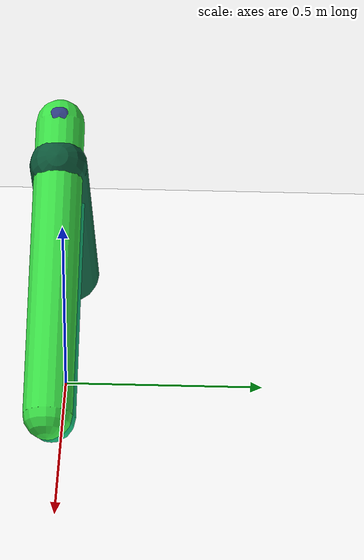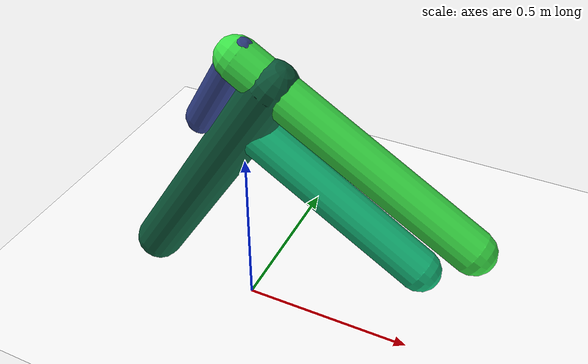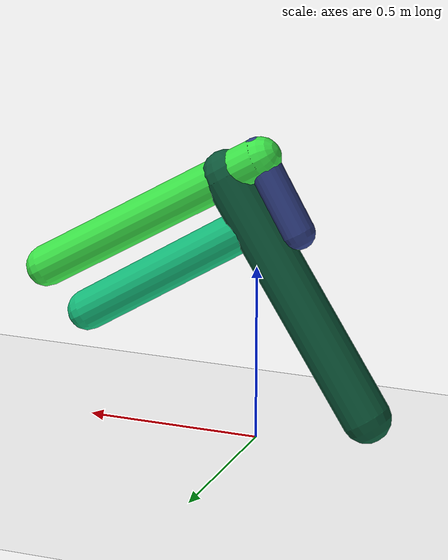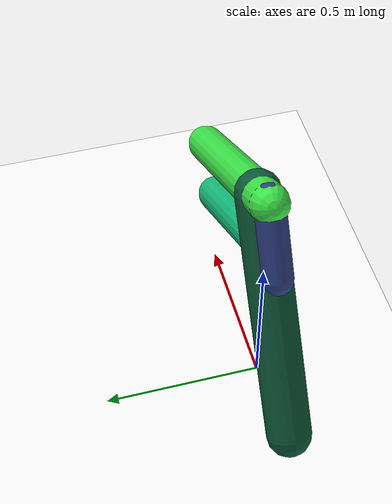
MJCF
<mujoco model="morphology">
  <option timestep="0.01"/>
  <default>
    <default class="/"/>
  </default>
  <asset>
    <texture name="texplane" type="2d" builtin="checker" rgb1="0.1 0.2 0.3" rgb2="0.2 0.3 0.4" width="300" height="300"/>
    <material name="MatPlane" class="/" texture="texplane" texrepeat="20 20" specular="1" shininess="1" reflectance="0.5"/>
  </asset>
  <worldbody>
    <light name="//unnamed_light_0" class="/" directional="true" pos="0 0 1.5" dir="0 0 -1.3" cutoff="1e+02" exponent="1" diffuse="1 1 1" specular="0.1 0.1 0.1"/>
    <geom name="ground" class="/" type="plane" size="15 15 0.5" material="MatPlane" rgba="1 1 1 1"/>
    <body name="body" pos="0 0 0.82">
      <geom name="geom0" class="/" type="capsule" contype="1" conaffinity="1" condim="3" size="0.046" rgba="0.19 0.25 0.53 1" friction="0.4 0.1 0.1" fromto="0 0 0 -0.12 0 -0.21"/>
      <body name="body1" pos="-0.0075 0 -0.012">
        <geom name="geom1" class="/" type="capsule" contype="1" conaffinity="1" condim="3" size="0.059" rgba="0.24 0.91 0.29 1" friction="0.4 0.1 0.1" fromto="0 0 0 0.64 0 -0.38"/>
        <body name="body2" pos="0.095 0 -0.056">
          <geom name="geom2" class="/" type="capsule" contype="1" conaffinity="1" condim="3" size="0.07" rgba="0.05 0.35 0.23 1" friction="0.4 0.1 0.1" fromto="0 0 0 -0.41 0 -0.65"/>
          <body name="body3" pos="-0.08 0 -0.13">
            <geom name="geom3" class="/" type="capsule" contype="1" conaffinity="1" condim="3" size="0.058" rgba="0.08 0.75 0.49 1" friction="0.4 0.1 0.1" fromto="0 0 0 0.5 0 -0.31"/>
            <joint name="joint3" class="/" type="hinge" axis="0 1 0" limited="true" stiffness="20" range="-41 41" armature="0.1" damping="2"/>
          </body>
          <joint name="joint2" class="/" type="hinge" axis="0 1 0" limited="true" stiffness="20" range="-68 68" armature="0.1" damping="2"/>
        </body>
        <joint name="joint1" class="/" type="hinge" axis="0 1 0" limited="true" stiffness="20" range="-44 44" armature="0.1" damping="2"/>
      </body>
      <joint name="rootx" class="/" type="slide" axis="1 0 0" limited="false" stiffness="0" armature="0" damping="0"/>
      <joint name="rootz" class="/" type="slide" axis="0 0 1" limited="false" stiffness="0" armature="0" damping="0"/>
      <joint name="rooty" class="/" type="hinge" axis="0 1 0" limited="false" stiffness="0" armature="0" damping="0"/>
    </body>
  </worldbody>
  <actuator>
    <motor name="motor3" class="/" ctrllimited="true" ctrlrange="-1 1" gear="1.2e+02" joint="joint3"/>
    <motor name="motor2" class="/" ctrllimited="true" ctrlrange="-1 1" gear="1.5e+02" joint="joint2"/>
    <motor name="motor1" class="/" ctrllimited="true" ctrlrange="-1 1" gear="1.9e+02" joint="joint1"/>
  </actuator>
  <sensor>
    <subtreelinvel name="velocity" body="body"/>
  </sensor>
</mujoco>
